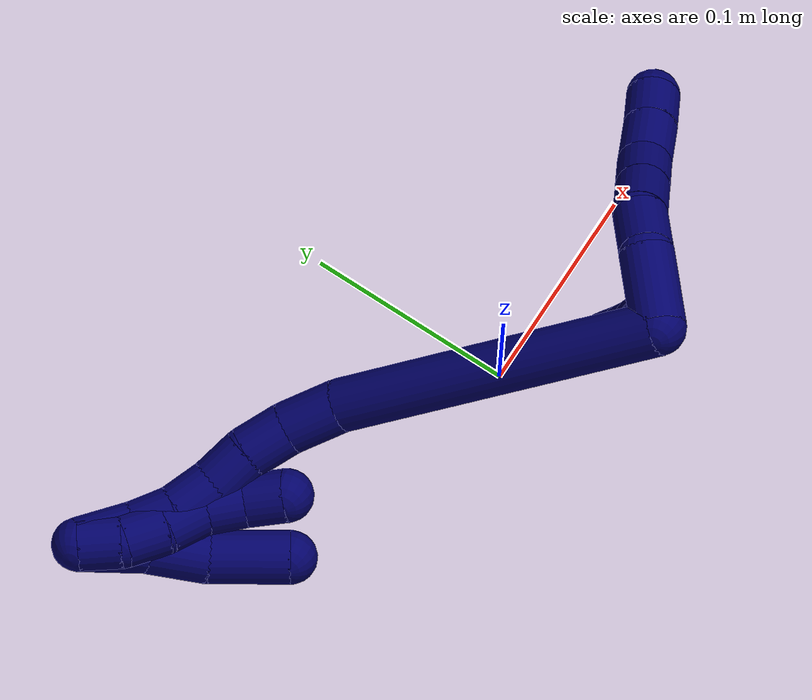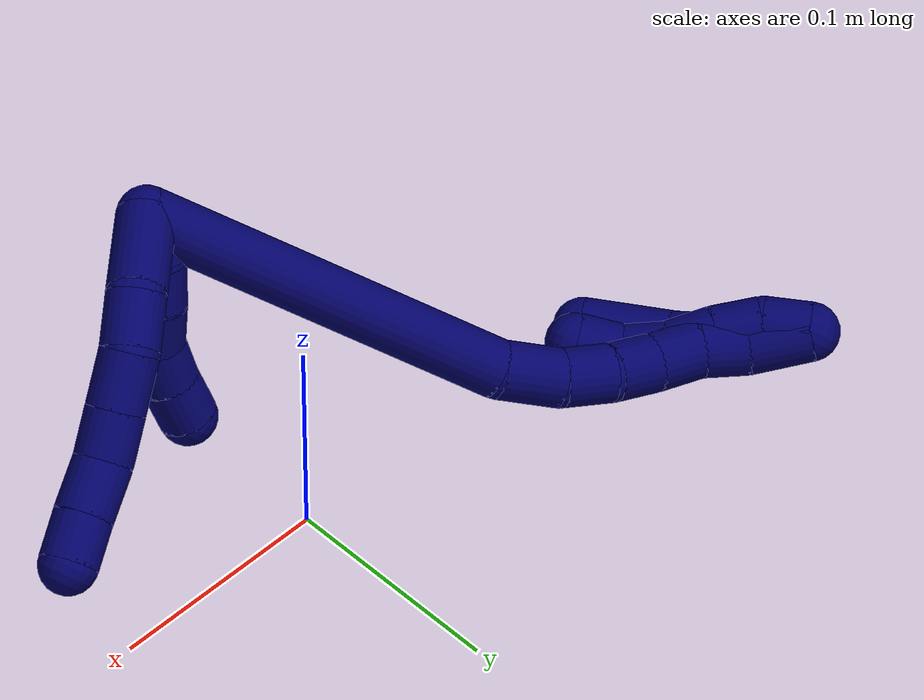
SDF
<sdf version="1.7">
 <world name="default">
  <model name="7">
   <static>0</static>
   <link name="7">
    <collision name="collision-cylinder-e_1_2_8">
     <pose>0.003751 0.010336 -0.015283 -2.54695 0.20058 -0.634635</pose>
     <geometry><cylinder><radius>0.0125</radius><length>0.037655</length></cylinder></geometry>
     <surface>
      <friction><ode><mu>1.16</mu><mu2>1.16</mu2><slip1>0</slip1><slip2>0</slip2></ode></friction>
      <contact><ode><kp>1e+06</kp><kd>1</kd><max_vel>0</max_vel><min_depth>0.001</min_depth></ode></contact>
     </surface>
    </collision>
    <visual name="visual-cylinder-e_1_2_8">
     <pose>0.003751 0.010336 -0.015283 -2.54695 0.20058 -0.634635</pose>
     <geometry><cylinder><radius>0.0125</radius><length>0.037655</length></cylinder></geometry>
     <material><ambient>0.003922 0 0.403922 1</ambient></material>
    </visual>
    <collision name="collision-cylinder-e_2_8_9">
     <pose>0.006814 0.025043 -0.041477 -2.76055 -0.058485 0.301044</pose>
     <geometry><cylinder><radius>0.0125</radius><length>0.023548</length></cylinder></geometry>
     <surface>
      <friction><ode><mu>1.16</mu><mu2>1.16</mu2><slip1>0</slip1><slip2>0</slip2></ode></friction>
      <contact><ode><kp>1e+06</kp><kd>1</kd><max_vel>0</max_vel><min_depth>0.001</min_depth></ode></contact>
     </surface>
    </collision>
    <visual name="visual-cylinder-e_2_8_9">
     <pose>0.006814 0.025043 -0.041477 -2.76055 -0.058485 0.301044</pose>
     <geometry><cylinder><radius>0.0125</radius><length>0.023548</length></cylinder></geometry>
     <material><ambient>0.003922 0 0.403922 1</ambient></material>
    </visual>
    <collision name="collision-cylinder-e_3_9_10">
     <pose>0.004065 0.030754 -0.064186 -3.02847 -0.171887 1.97872</pose>
     <geometry><cylinder><radius>0.0125</radius><length>0.024103</length></cylinder></geometry>
     <surface>
      <friction><ode><mu>1.16</mu><mu2>1.16</mu2><slip1>0</slip1><slip2>0</slip2></ode></friction>
      <contact><ode><kp>1e+06</kp><kd>1</kd><max_vel>0</max_vel><min_depth>0.001</min_depth></ode></contact>
     </surface>
    </collision>
    <visual name="visual-cylinder-e_3_9_10">
     <pose>0.004065 0.030754 -0.064186 -3.02847 -0.171887 1.97872</pose>
     <geometry><cylinder><radius>0.0125</radius><length>0.024103</length></cylinder></geometry>
     <material><ambient>0.003922 0 0.403922 1</ambient></material>
    </visual>
    <collision name="collision-cylinder-e_4_10_11">
     <pose>0.000288 0.033359 -0.086346 -3.02019 -0.162878 1.86147</pose>
     <geometry><cylinder><radius>0.0125</radius><length>0.021157</length></cylinder></geometry>
     <surface>
      <friction><ode><mu>1.16</mu><mu2>1.16</mu2><slip1>0</slip1><slip2>0</slip2></ode></friction>
      <contact><ode><kp>1e+06</kp><kd>1</kd><max_vel>0</max_vel><min_depth>0.001</min_depth></ode></contact>
     </surface>
    </collision>
    <visual name="visual-cylinder-e_4_10_11">
     <pose>0.000288 0.033359 -0.086346 -3.02019 -0.162878 1.86147</pose>
     <geometry><cylinder><radius>0.0125</radius><length>0.021157</length></cylinder></geometry>
     <material><ambient>0.003922 0 0.403922 1</ambient></material>
    </visual>
    <collision name="collision-cylinder-e_5_11_12">
     <pose>-0.000549 0.036879 -0.108216 -2.94802 0.074759 -0.735328</pose>
     <geometry><cylinder><radius>0.0125</radius><length>0.023521</length></cylinder></geometry>
     <surface>
      <friction><ode><mu>1.16</mu><mu2>1.16</mu2><slip1>0</slip1><slip2>0</slip2></ode></friction>
      <contact><ode><kp>1e+06</kp><kd>1</kd><max_vel>0</max_vel><min_depth>0.001</min_depth></ode></contact>
     </surface>
    </collision>
    <visual name="visual-cylinder-e_5_11_12">
     <pose>-0.000549 0.036879 -0.108216 -2.94802 0.074759 -0.735328</pose>
     <geometry><cylinder><radius>0.0125</radius><length>0.023521</length></cylinder></geometry>
     <material><ambient>0.003922 0 0.403922 1</ambient></material>
    </visual>
    <collision name="collision-cylinder-e_6_12_6">
     <pose>0.000822 0.041429 -0.129454 -2.91009 0.049251 -0.417494</pose>
     <geometry><cylinder><radius>0.0125</radius><length>0.020015</length></cylinder></geometry>
     <surface>
      <friction><ode><mu>1.16</mu><mu2>1.16</mu2><slip1>0</slip1><slip2>0</slip2></ode></friction>
      <contact><ode><kp>1e+06</kp><kd>1</kd><max_vel>0</max_vel><min_depth>0.001</min_depth></ode></contact>
     </surface>
    </collision>
    <visual name="visual-cylinder-e_6_12_6">
     <pose>0.000822 0.041429 -0.129454 -2.91009 0.049251 -0.417494</pose>
     <geometry><cylinder><radius>0.0125</radius><length>0.020015</length></cylinder></geometry>
     <material><ambient>0.003922 0 0.403922 1</ambient></material>
    </visual>
    <collision name="collision-cylinder-e_1_2_13">
     <pose>-0.006683 0.001284 -0.007327 -2.96812 -0.731948 2.69535</pose>
     <geometry><cylinder><radius>0.0125</radius><length>0.02</length></cylinder></geometry>
     <surface>
      <friction><ode><mu>1.16</mu><mu2>1.16</mu2><slip1>0</slip1><slip2>0</slip2></ode></friction>
      <contact><ode><kp>1e+06</kp><kd>1</kd><max_vel>0</max_vel><min_depth>0.001</min_depth></ode></contact>
     </surface>
    </collision>
    <visual name="visual-cylinder-e_1_2_13">
     <pose>-0.006683 0.001284 -0.007327 -2.96812 -0.731948 2.69535</pose>
     <geometry><cylinder><radius>0.0125</radius><length>0.02</length></cylinder></geometry>
     <material><ambient>0.003922 0 0.403922 1</ambient></material>
    </visual>
    <collision name="collision-cylinder-e_2_13_14">
     <pose>-0.019798 0.001682 -0.02226 3.02566 -0.698639 -2.82563</pose>
     <geometry><cylinder><radius>0.0125</radius><length>0.02</length></cylinder></geometry>
     <surface>
      <friction><ode><mu>1.16</mu><mu2>1.16</mu2><slip1>0</slip1><slip2>0</slip2></ode></friction>
      <contact><ode><kp>1e+06</kp><kd>1</kd><max_vel>0</max_vel><min_depth>0.001</min_depth></ode></contact>
     </surface>
    </collision>
    <visual name="visual-cylinder-e_2_13_14">
     <pose>-0.019798 0.001682 -0.02226 3.02566 -0.698639 -2.82563</pose>
     <geometry><cylinder><radius>0.0125</radius><length>0.02</length></cylinder></geometry>
     <material><ambient>0.003922 0 0.403922 1</ambient></material>
    </visual>
    <collision name="collision-cylinder-e_3_14_15">
     <pose>-0.032588 -0.001099 -0.037348 2.89341 -0.689074 -2.47255</pose>
     <geometry><cylinder><radius>0.0125</radius><length>0.02</length></cylinder></geometry>
     <surface>
      <friction><ode><mu>1.16</mu><mu2>1.16</mu2><slip1>0</slip1><slip2>0</slip2></ode></friction>
      <contact><ode><kp>1e+06</kp><kd>1</kd><max_vel>0</max_vel><min_depth>0.001</min_depth></ode></contact>
     </surface>
    </collision>
    <visual name="visual-cylinder-e_3_14_15">
     <pose>-0.032588 -0.001099 -0.037348 2.89341 -0.689074 -2.47255</pose>
     <geometry><cylinder><radius>0.0125</radius><length>0.02</length></cylinder></geometry>
     <material><ambient>0.003922 0 0.403922 1</ambient></material>
    </visual>
    <collision name="collision-cylinder-e_4_15_16">
     <pose>-0.047256 -0.002901 -0.050391 -3.1246 -0.980916 3.10977</pose>
     <geometry><cylinder><radius>0.0125</radius><length>0.02</length></cylinder></geometry>
     <surface>
      <friction><ode><mu>1.16</mu><mu2>1.16</mu2><slip1>0</slip1><slip2>0</slip2></ode></friction>
      <contact><ode><kp>1e+06</kp><kd>1</kd><max_vel>0</max_vel><min_depth>0.001</min_depth></ode></contact>
     </surface>
    </collision>
    <visual name="visual-cylinder-e_4_15_16">
     <pose>-0.047256 -0.002901 -0.050391 -3.1246 -0.980916 3.10977</pose>
     <geometry><cylinder><radius>0.0125</radius><length>0.02</length></cylinder></geometry>
     <material><ambient>0.003922 0 0.403922 1</ambient></material>
    </visual>
    <collision name="collision-cylinder-e_5_16_5">
     <pose>-0.064193 -0.00189 -0.060927 -2.95939 -1.04053 2.82534</pose>
     <geometry><cylinder><radius>0.0125</radius><length>0.02</length></cylinder></geometry>
     <surface>
      <friction><ode><mu>1.16</mu><mu2>1.16</mu2><slip1>0</slip1><slip2>0</slip2></ode></friction>
      <contact><ode><kp>1e+06</kp><kd>1</kd><max_vel>0</max_vel><min_depth>0.001</min_depth></ode></contact>
     </surface>
    </collision>
    <visual name="visual-cylinder-e_5_16_5">
     <pose>-0.064193 -0.00189 -0.060927 -2.95939 -1.04053 2.82534</pose>
     <geometry><cylinder><radius>0.0125</radius><length>0.02</length></cylinder></geometry>
     <material><ambient>0.003922 0 0.403922 1</ambient></material>
    </visual>
    <collision name="collision-cylinder-e_1_2_17">
     <pose>-0.068661 0.042469 0.002348 -1.51556 -1.01618 0.969894</pose>
     <geometry><cylinder><radius>0.0125</radius><length>0.161536</length></cylinder></geometry>
     <surface>
      <friction><ode><mu>1.16</mu><mu2>1.16</mu2><slip1>0</slip1><slip2>0</slip2></ode></friction>
      <contact><ode><kp>1e+06</kp><kd>1</kd><max_vel>0</max_vel><min_depth>0.001</min_depth></ode></contact>
     </surface>
    </collision>
    <visual name="visual-cylinder-e_1_2_17">
     <pose>-0.068661 0.042469 0.002348 -1.51556 -1.01618 0.969894</pose>
     <geometry><cylinder><radius>0.0125</radius><length>0.161536</length></cylinder></geometry>
     <material><ambient>0.003922 0 0.403922 1</ambient></material>
    </visual>
    <collision name="collision-cylinder-e_2_17_18">
     <pose>-0.148639 0.091311 0.00851 -1.0316 -0.990017 0.594064</pose>
     <geometry><cylinder><radius>0.0125</radius><length>0.027072</length></cylinder></geometry>
     <surface>
      <friction><ode><mu>1.16</mu><mu2>1.16</mu2><slip1>0</slip1><slip2>0</slip2></ode></friction>
      <contact><ode><kp>1e+06</kp><kd>1</kd><max_vel>0</max_vel><min_depth>0.001</min_depth></ode></contact>
     </surface>
    </collision>
    <visual name="visual-cylinder-e_2_17_18">
     <pose>-0.148639 0.091311 0.00851 -1.0316 -0.990017 0.594064</pose>
     <geometry><cylinder><radius>0.0125</radius><length>0.027072</length></cylinder></geometry>
     <material><ambient>0.003922 0 0.403922 1</ambient></material>
    </visual>
    <collision name="collision-cylinder-e_3_18_19">
     <pose>-0.168445 0.101983 0.017667 -0.677538 -0.891232 0.333483</pose>
     <geometry><cylinder><radius>0.0125</radius><length>0.021827</length></cylinder></geometry>
     <surface>
      <friction><ode><mu>1.16</mu><mu2>1.16</mu2><slip1>0</slip1><slip2>0</slip2></ode></friction>
      <contact><ode><kp>1e+06</kp><kd>1</kd><max_vel>0</max_vel><min_depth>0.001</min_depth></ode></contact>
     </surface>
    </collision>
    <visual name="visual-cylinder-e_3_18_19">
     <pose>-0.168445 0.101983 0.017667 -0.677538 -0.891232 0.333483</pose>
     <geometry><cylinder><radius>0.0125</radius><length>0.021827</length></cylinder></geometry>
     <material><ambient>0.003922 0 0.403922 1</ambient></material>
    </visual>
    <collision name="collision-cylinder-e_4_19_20">
     <pose>-0.185541 0.108325 0.028738 -0.342539 -0.955756 0.178685</pose>
     <geometry><cylinder><radius>0.0125</radius><length>0.021076</length></cylinder></geometry>
     <surface>
      <friction><ode><mu>1.16</mu><mu2>1.16</mu2><slip1>0</slip1><slip2>0</slip2></ode></friction>
      <contact><ode><kp>1e+06</kp><kd>1</kd><max_vel>0</max_vel><min_depth>0.001</min_depth></ode></contact>
     </surface>
    </collision>
    <visual name="visual-cylinder-e_4_19_20">
     <pose>-0.185541 0.108325 0.028738 -0.342539 -0.955756 0.178685</pose>
     <geometry><cylinder><radius>0.0125</radius><length>0.021076</length></cylinder></geometry>
     <material><ambient>0.003922 0 0.403922 1</ambient></material>
    </visual>
    <collision name="collision-cylinder-e_5_20_21">
     <pose>-0.201291 0.114129 0.041373 -0.498643 -0.73729 0.196091</pose>
     <geometry><cylinder><radius>0.0125</radius><length>0.021251</length></cylinder></geometry>
     <surface>
      <friction><ode><mu>1.16</mu><mu2>1.16</mu2><slip1>0</slip1><slip2>0</slip2></ode></friction>
      <contact><ode><kp>1e+06</kp><kd>1</kd><max_vel>0</max_vel><min_depth>0.001</min_depth></ode></contact>
     </surface>
    </collision>
    <visual name="visual-cylinder-e_5_20_21">
     <pose>-0.201291 0.114129 0.041373 -0.498643 -0.73729 0.196091</pose>
     <geometry><cylinder><radius>0.0125</radius><length>0.021251</length></cylinder></geometry>
     <material><ambient>0.003922 0 0.403922 1</ambient></material>
    </visual>
    <collision name="collision-cylinder-e_6_21_22">
     <pose>-0.215496 0.123442 0.053085 -0.857456 -0.766053 0.364259</pose>
     <geometry><cylinder><radius>0.0125</radius><length>0.020372</length></cylinder></geometry>
     <surface>
      <friction><ode><mu>1.16</mu><mu2>1.16</mu2><slip1>0</slip1><slip2>0</slip2></ode></friction>
      <contact><ode><kp>1e+06</kp><kd>1</kd><max_vel>0</max_vel><min_depth>0.001</min_depth></ode></contact>
     </surface>
    </collision>
    <visual name="visual-cylinder-e_6_21_22">
     <pose>-0.215496 0.123442 0.053085 -0.857456 -0.766053 0.364259</pose>
     <geometry><cylinder><radius>0.0125</radius><length>0.020372</length></cylinder></geometry>
     <material><ambient>0.003922 0 0.403922 1</ambient></material>
    </visual>
    <collision name="collision-cylinder-e_7_22_1">
     <pose>-0.228925 0.137632 0.065967 -0.8189 -0.493773 0.217883</pose>
     <geometry><cylinder><radius>0.0125</radius><length>0.026866</length></cylinder></geometry>
     <surface>
      <friction><ode><mu>1.16</mu><mu2>1.16</mu2><slip1>0</slip1><slip2>0</slip2></ode></friction>
      <contact><ode><kp>1e+06</kp><kd>1</kd><max_vel>0</max_vel><min_depth>0.001</min_depth></ode></contact>
     </surface>
    </collision>
    <visual name="visual-cylinder-e_7_22_1">
     <pose>-0.228925 0.137632 0.065967 -0.8189 -0.493773 0.217883</pose>
     <geometry><cylinder><radius>0.0125</radius><length>0.026866</length></cylinder></geometry>
     <material><ambient>0.003922 0 0.403922 1</ambient></material>
    </visual>
    <collision name="collision-cylinder-e_1_1_23">
     <pose>-0.229701 0.138566 0.070984 1.94901 0.593171 0.846156</pose>
     <geometry><cylinder><radius>0.0125</radius><length>0.02</length></cylinder></geometry>
     <surface>
      <friction><ode><mu>1.16</mu><mu2>1.16</mu2><slip1>0</slip1><slip2>0</slip2></ode></friction>
      <contact><ode><kp>1e+06</kp><kd>1</kd><max_vel>0</max_vel><min_depth>0.001</min_depth></ode></contact>
     </surface>
    </collision>
    <visual name="visual-cylinder-e_1_1_23">
     <pose>-0.229701 0.138566 0.070984 1.94901 0.593171 0.846156</pose>
     <geometry><cylinder><radius>0.0125</radius><length>0.02</length></cylinder></geometry>
     <material><ambient>0.003922 0 0.403922 1</ambient></material>
    </visual>
    <collision name="collision-cylinder-e_2_23_24">
     <pose>-0.218978 0.124616 0.062036 2.32677 0.539114 1.1389</pose>
     <geometry><cylinder><radius>0.0125</radius><length>0.02</length></cylinder></geometry>
     <surface>
      <friction><ode><mu>1.16</mu><mu2>1.16</mu2><slip1>0</slip1><slip2>0</slip2></ode></friction>
      <contact><ode><kp>1e+06</kp><kd>1</kd><max_vel>0</max_vel><min_depth>0.001</min_depth></ode></contact>
     </surface>
    </collision>
    <visual name="visual-cylinder-e_2_23_24">
     <pose>-0.218978 0.124616 0.062036 2.32677 0.539114 1.1389</pose>
     <geometry><cylinder><radius>0.0125</radius><length>0.02</length></cylinder></geometry>
     <material><ambient>0.003922 0 0.403922 1</ambient></material>
    </visual>
    <collision name="collision-cylinder-e_3_24_25">
     <pose>-0.208589 0.113384 0.049256 2.51514 0.553312 1.43953</pose>
     <geometry><cylinder><radius>0.0125</radius><length>0.02</length></cylinder></geometry>
     <surface>
      <friction><ode><mu>1.16</mu><mu2>1.16</mu2><slip1>0</slip1><slip2>0</slip2></ode></friction>
      <contact><ode><kp>1e+06</kp><kd>1</kd><max_vel>0</max_vel><min_depth>0.001</min_depth></ode></contact>
     </surface>
    </collision>
    <visual name="visual-cylinder-e_3_24_25">
     <pose>-0.208589 0.113384 0.049256 2.51514 0.553312 1.43953</pose>
     <geometry><cylinder><radius>0.0125</radius><length>0.02</length></cylinder></geometry>
     <material><ambient>0.003922 0 0.403922 1</ambient></material>
    </visual>
    <collision name="collision-cylinder-e_4_25_26">
     <pose>-0.198227 0.101268 0.037556 2.16426 0.535957 0.953439</pose>
     <geometry><cylinder><radius>0.0125</radius><length>0.02</length></cylinder></geometry>
     <surface>
      <friction><ode><mu>1.16</mu><mu2>1.16</mu2><slip1>0</slip1><slip2>0</slip2></ode></friction>
      <contact><ode><kp>1e+06</kp><kd>1</kd><max_vel>0</max_vel><min_depth>0.001</min_depth></ode></contact>
     </surface>
    </collision>
    <visual name="visual-cylinder-e_4_25_26">
     <pose>-0.198227 0.101268 0.037556 2.16426 0.535957 0.953439</pose>
     <geometry><cylinder><radius>0.0125</radius><length>0.02</length></cylinder></geometry>
     <material><ambient>0.003922 0 0.403922 1</ambient></material>
    </visual>
    <collision name="collision-cylinder-e_5_26_4">
     <pose>-0.186151 0.087225 0.030852 1.83834 0.771145 0.978029</pose>
     <geometry><cylinder><radius>0.0125</radius><length>0.02</length></cylinder></geometry>
     <surface>
      <friction><ode><mu>1.16</mu><mu2>1.16</mu2><slip1>0</slip1><slip2>0</slip2></ode></friction>
      <contact><ode><kp>1e+06</kp><kd>1</kd><max_vel>0</max_vel><min_depth>0.001</min_depth></ode></contact>
     </surface>
    </collision>
    <visual name="visual-cylinder-e_5_26_4">
     <pose>-0.186151 0.087225 0.030852 1.83834 0.771145 0.978029</pose>
     <geometry><cylinder><radius>0.0125</radius><length>0.02</length></cylinder></geometry>
     <material><ambient>0.003922 0 0.403922 1</ambient></material>
    </visual>
    <collision name="collision-cylinder-e_1_1_27">
     <pose>-0.231995 0.132776 0.065452 2.13788 0.203208 0.367424</pose>
     <geometry><cylinder><radius>0.0125</radius><length>0.032671</length></cylinder></geometry>
     <surface>
      <friction><ode><mu>1.16</mu><mu2>1.16</mu2><slip1>0</slip1><slip2>0</slip2></ode></friction>
      <contact><ode><kp>1e+06</kp><kd>1</kd><max_vel>0</max_vel><min_depth>0.001</min_depth></ode></contact>
     </surface>
    </collision>
    <visual name="visual-cylinder-e_1_1_27">
     <pose>-0.231995 0.132776 0.065452 2.13788 0.203208 0.367424</pose>
     <geometry><cylinder><radius>0.0125</radius><length>0.032671</length></cylinder></geometry>
     <material><ambient>0.003922 0 0.403922 1</ambient></material>
    </visual>
    <collision name="collision-cylinder-e_2_27_28">
     <pose>-0.224829 0.105872 0.052202 1.90497 0.266088 0.371929</pose>
     <geometry><cylinder><radius>0.0125</radius><length>0.029424</length></cylinder></geometry>
     <surface>
      <friction><ode><mu>1.16</mu><mu2>1.16</mu2><slip1>0</slip1><slip2>0</slip2></ode></friction>
      <contact><ode><kp>1e+06</kp><kd>1</kd><max_vel>0</max_vel><min_depth>0.001</min_depth></ode></contact>
     </surface>
    </collision>
    <visual name="visual-cylinder-e_2_27_28">
     <pose>-0.224829 0.105872 0.052202 1.90497 0.266088 0.371929</pose>
     <geometry><cylinder><radius>0.0125</radius><length>0.029424</length></cylinder></geometry>
     <material><ambient>0.003922 0 0.403922 1</ambient></material>
    </visual>
    <collision name="collision-cylinder-e_3_28_3">
     <pose>-0.211372 0.076964 0.042349 1.89431 0.530476 0.722058</pose>
     <geometry><cylinder><radius>0.0125</radius><length>0.037905</length></cylinder></geometry>
     <surface>
      <friction><ode><mu>1.16</mu><mu2>1.16</mu2><slip1>0</slip1><slip2>0</slip2></ode></friction>
      <contact><ode><kp>1e+06</kp><kd>1</kd><max_vel>0</max_vel><min_depth>0.001</min_depth></ode></contact>
     </surface>
    </collision>
    <visual name="visual-cylinder-e_3_28_3">
     <pose>-0.211372 0.076964 0.042349 1.89431 0.530476 0.722058</pose>
     <geometry><cylinder><radius>0.0125</radius><length>0.037905</length></cylinder></geometry>
     <material><ambient>0.003922 0 0.403922 1</ambient></material>
    </visual>
    <collision name="collision-sphere-3">
     <pose>-0.201783 0.061464 0.037152 0 -0 0</pose>
     <geometry><sphere><radius>0.0125</radius></sphere></geometry>
     <surface>
      <friction><ode><mu>1.16</mu><mu2>1.16</mu2><slip1>0</slip1><slip2>0</slip2></ode></friction>
      <contact><ode><kp>1e+06</kp><kd>1</kd><max_vel>0</max_vel><min_depth>0.001</min_depth></ode></contact>
     </surface>
    </collision>
    <visual name="visual-sphere-3">
     <pose>-0.201783 0.061464 0.037152 0 -0 0</pose>
     <geometry><sphere><radius>0.0125</radius></sphere></geometry>
     <material><ambient>0.003922 0 0.403922 1</ambient></material>
    </visual>
    <collision name="collision-sphere-28">
     <pose>-0.220961 0.092463 0.047546 0 -0 0</pose>
     <geometry><sphere><radius>0.0125</radius></sphere></geometry>
     <surface>
      <friction><ode><mu>1.16</mu><mu2>1.16</mu2><slip1>0</slip1><slip2>0</slip2></ode></friction>
      <contact><ode><kp>1e+06</kp><kd>1</kd><max_vel>0</max_vel><min_depth>0.001</min_depth></ode></contact>
     </surface>
    </collision>
    <visual name="visual-sphere-28">
     <pose>-0.220961 0.092463 0.047546 0 -0 0</pose>
     <geometry><sphere><radius>0.0125</radius></sphere></geometry>
     <material><ambient>0.003922 0 0.403922 1</ambient></material>
    </visual>
    <collision name="collision-sphere-27">
     <pose>-0.228698 0.119281 0.056857 0 -0 0</pose>
     <geometry><sphere><radius>0.0125</radius></sphere></geometry>
     <surface>
      <friction><ode><mu>1.16</mu><mu2>1.16</mu2><slip1>0</slip1><slip2>0</slip2></ode></friction>
      <contact><ode><kp>1e+06</kp><kd>1</kd><max_vel>0</max_vel><min_depth>0.001</min_depth></ode></contact>
     </surface>
    </collision>
    <visual name="visual-sphere-27">
     <pose>-0.228698 0.119281 0.056857 0 -0 0</pose>
     <geometry><sphere><radius>0.0125</radius></sphere></geometry>
     <material><ambient>0.003922 0 0.403922 1</ambient></material>
    </visual>
    <collision name="collision-sphere-4">
     <pose>-0.179181 0.080309 0.028956 0 -0 0</pose>
     <geometry><sphere><radius>0.0125</radius></sphere></geometry>
     <surface>
      <friction><ode><mu>1.16</mu><mu2>1.16</mu2><slip1>0</slip1><slip2>0</slip2></ode></friction>
      <contact><ode><kp>1e+06</kp><kd>1</kd><max_vel>0</max_vel><min_depth>0.001</min_depth></ode></contact>
     </surface>
    </collision>
    <visual name="visual-sphere-4">
     <pose>-0.179181 0.080309 0.028956 0 -0 0</pose>
     <geometry><sphere><radius>0.0125</radius></sphere></geometry>
     <material><ambient>0.003922 0 0.403922 1</ambient></material>
    </visual>
    <collision name="collision-sphere-26">
     <pose>-0.19312 0.094141 0.032747 0 -0 0</pose>
     <geometry><sphere><radius>0.0125</radius></sphere></geometry>
     <surface>
      <friction><ode><mu>1.16</mu><mu2>1.16</mu2><slip1>0</slip1><slip2>0</slip2></ode></friction>
      <contact><ode><kp>1e+06</kp><kd>1</kd><max_vel>0</max_vel><min_depth>0.001</min_depth></ode></contact>
     </surface>
    </collision>
    <visual name="visual-sphere-26">
     <pose>-0.19312 0.094141 0.032747 0 -0 0</pose>
     <geometry><sphere><radius>0.0125</radius></sphere></geometry>
     <material><ambient>0.003922 0 0.403922 1</ambient></material>
    </visual>
    <collision name="collision-sphere-25">
     <pose>-0.203334 0.108396 0.042364 0 -0 0</pose>
     <geometry><sphere><radius>0.0125</radius></sphere></geometry>
     <surface>
      <friction><ode><mu>1.16</mu><mu2>1.16</mu2><slip1>0</slip1><slip2>0</slip2></ode></friction>
      <contact><ode><kp>1e+06</kp><kd>1</kd><max_vel>0</max_vel><min_depth>0.001</min_depth></ode></contact>
     </surface>
    </collision>
    <visual name="visual-sphere-25">
     <pose>-0.203334 0.108396 0.042364 0 -0 0</pose>
     <geometry><sphere><radius>0.0125</radius></sphere></geometry>
     <material><ambient>0.003922 0 0.403922 1</ambient></material>
    </visual>
    <collision name="collision-sphere-24">
     <pose>-0.213844 0.118372 0.056149 0 -0 0</pose>
     <geometry><sphere><radius>0.0125</radius></sphere></geometry>
     <surface>
      <friction><ode><mu>1.16</mu><mu2>1.16</mu2><slip1>0</slip1><slip2>0</slip2></ode></friction>
      <contact><ode><kp>1e+06</kp><kd>1</kd><max_vel>0</max_vel><min_depth>0.001</min_depth></ode></contact>
     </surface>
    </collision>
    <visual name="visual-sphere-24">
     <pose>-0.213844 0.118372 0.056149 0 -0 0</pose>
     <geometry><sphere><radius>0.0125</radius></sphere></geometry>
     <material><ambient>0.003922 0 0.403922 1</ambient></material>
    </visual>
    <collision name="collision-sphere-23">
     <pose>-0.224111 0.13086 0.067922 0 -0 0</pose>
     <geometry><sphere><radius>0.0125</radius></sphere></geometry>
     <surface>
      <friction><ode><mu>1.16</mu><mu2>1.16</mu2><slip1>0</slip1><slip2>0</slip2></ode></friction>
      <contact><ode><kp>1e+06</kp><kd>1</kd><max_vel>0</max_vel><min_depth>0.001</min_depth></ode></contact>
     </surface>
    </collision>
    <visual name="visual-sphere-23">
     <pose>-0.224111 0.13086 0.067922 0 -0 0</pose>
     <geometry><sphere><radius>0.0125</radius></sphere></geometry>
     <material><ambient>0.003922 0 0.403922 1</ambient></material>
    </visual>
    <collision name="collision-sphere-1">
     <pose>-0.235291 0.146271 0.074046 0 -0 0</pose>
     <geometry><sphere><radius>0.0125</radius></sphere></geometry>
     <surface>
      <friction><ode><mu>1.16</mu><mu2>1.16</mu2><slip1>0</slip1><slip2>0</slip2></ode></friction>
      <contact><ode><kp>1e+06</kp><kd>1</kd><max_vel>0</max_vel><min_depth>0.001</min_depth></ode></contact>
     </surface>
    </collision>
    <visual name="visual-sphere-1">
     <pose>-0.235291 0.146271 0.074046 0 -0 0</pose>
     <geometry><sphere><radius>0.0125</radius></sphere></geometry>
     <material><ambient>0.003922 0 0.403922 1</ambient></material>
    </visual>
    <collision name="collision-sphere-22">
     <pose>-0.222558 0.128992 0.057888 0 -0 0</pose>
     <geometry><sphere><radius>0.0125</radius></sphere></geometry>
     <surface>
      <friction><ode><mu>1.16</mu><mu2>1.16</mu2><slip1>0</slip1><slip2>0</slip2></ode></friction>
      <contact><ode><kp>1e+06</kp><kd>1</kd><max_vel>0</max_vel><min_depth>0.001</min_depth></ode></contact>
     </surface>
    </collision>
    <visual name="visual-sphere-22">
     <pose>-0.222558 0.128992 0.057888 0 -0 0</pose>
     <geometry><sphere><radius>0.0125</radius></sphere></geometry>
     <material><ambient>0.003922 0 0.403922 1</ambient></material>
    </visual>
    <collision name="collision-sphere-21">
     <pose>-0.208434 0.117891 0.048281 0 -0 0</pose>
     <geometry><sphere><radius>0.0125</radius></sphere></geometry>
     <surface>
      <friction><ode><mu>1.16</mu><mu2>1.16</mu2><slip1>0</slip1><slip2>0</slip2></ode></friction>
      <contact><ode><kp>1e+06</kp><kd>1</kd><max_vel>0</max_vel><min_depth>0.001</min_depth></ode></contact>
     </surface>
    </collision>
    <visual name="visual-sphere-21">
     <pose>-0.208434 0.117891 0.048281 0 -0 0</pose>
     <geometry><sphere><radius>0.0125</radius></sphere></geometry>
     <material><ambient>0.003922 0 0.403922 1</ambient></material>
    </visual>
    <collision name="collision-sphere-12">
     <pose>0.000329 0.039135 -0.119725 0 -0 0</pose>
     <geometry><sphere><radius>0.0125</radius></sphere></geometry>
     <surface>
      <friction><ode><mu>1.16</mu><mu2>1.16</mu2><slip1>0</slip1><slip2>0</slip2></ode></friction>
      <contact><ode><kp>1e+06</kp><kd>1</kd><max_vel>0</max_vel><min_depth>0.001</min_depth></ode></contact>
     </surface>
    </collision>
    <visual name="visual-sphere-12">
     <pose>0.000329 0.039135 -0.119725 0 -0 0</pose>
     <geometry><sphere><radius>0.0125</radius></sphere></geometry>
     <material><ambient>0.003922 0 0.403922 1</ambient></material>
    </visual>
    <collision name="collision-sphere-11">
     <pose>-0.001428 0.034623 -0.096707 0 -0 0</pose>
     <geometry><sphere><radius>0.0125</radius></sphere></geometry>
     <surface>
      <friction><ode><mu>1.16</mu><mu2>1.16</mu2><slip1>0</slip1><slip2>0</slip2></ode></friction>
      <contact><ode><kp>1e+06</kp><kd>1</kd><max_vel>0</max_vel><min_depth>0.001</min_depth></ode></contact>
     </surface>
    </collision>
    <visual name="visual-sphere-11">
     <pose>-0.001428 0.034623 -0.096707 0 -0 0</pose>
     <geometry><sphere><radius>0.0125</radius></sphere></geometry>
     <material><ambient>0.003922 0 0.403922 1</ambient></material>
    </visual>
    <collision name="collision-sphere-10">
     <pose>0.002003 0.032095 -0.075984 0 -0 0</pose>
     <geometry><sphere><radius>0.0125</radius></sphere></geometry>
     <surface>
      <friction><ode><mu>1.16</mu><mu2>1.16</mu2><slip1>0</slip1><slip2>0</slip2></ode></friction>
      <contact><ode><kp>1e+06</kp><kd>1</kd><max_vel>0</max_vel><min_depth>0.001</min_depth></ode></contact>
     </surface>
    </collision>
    <visual name="visual-sphere-10">
     <pose>0.002003 0.032095 -0.075984 0 -0 0</pose>
     <geometry><sphere><radius>0.0125</radius></sphere></geometry>
     <material><ambient>0.003922 0 0.403922 1</ambient></material>
    </visual>
    <collision name="collision-sphere-9">
     <pose>0.006126 0.029414 -0.052388 0 -0 0</pose>
     <geometry><sphere><radius>0.0125</radius></sphere></geometry>
     <surface>
      <friction><ode><mu>1.16</mu><mu2>1.16</mu2><slip1>0</slip1><slip2>0</slip2></ode></friction>
      <contact><ode><kp>1e+06</kp><kd>1</kd><max_vel>0</max_vel><min_depth>0.001</min_depth></ode></contact>
     </surface>
    </collision>
    <visual name="visual-sphere-9">
     <pose>0.006126 0.029414 -0.052388 0 -0 0</pose>
     <geometry><sphere><radius>0.0125</radius></sphere></geometry>
     <material><ambient>0.003922 0 0.403922 1</ambient></material>
    </visual>
    <collision name="collision-sphere-2">
     <geometry><sphere><radius>0.0125</radius></sphere></geometry>
     <surface>
      <friction><ode><mu>1.16</mu><mu2>1.16</mu2><slip1>0</slip1><slip2>0</slip2></ode></friction>
      <contact><ode><kp>1e+06</kp><kd>1</kd><max_vel>0</max_vel><min_depth>0.001</min_depth></ode></contact>
     </surface>
    </collision>
    <visual name="visual-sphere-2">
     <geometry><sphere><radius>0.0125</radius></sphere></geometry>
     <material><ambient>0.003922 0 0.403922 1</ambient></material>
    </visual>
    <collision name="collision-sphere-19">
     <pose>-0.176934 0.106283 0.023011 0 -0 0</pose>
     <geometry><sphere><radius>0.0125</radius></sphere></geometry>
     <surface>
      <friction><ode><mu>1.16</mu><mu2>1.16</mu2><slip1>0</slip1><slip2>0</slip2></ode></friction>
      <contact><ode><kp>1e+06</kp><kd>1</kd><max_vel>0</max_vel><min_depth>0.001</min_depth></ode></contact>
     </surface>
    </collision>
    <visual name="visual-sphere-19">
     <pose>-0.176934 0.106283 0.023011 0 -0 0</pose>
     <geometry><sphere><radius>0.0125</radius></sphere></geometry>
     <material><ambient>0.003922 0 0.403922 1</ambient></material>
    </visual>
    <collision name="collision-sphere-8">
     <pose>0.007502 0.020672 -0.030566 0 -0 0</pose>
     <geometry><sphere><radius>0.0125</radius></sphere></geometry>
     <surface>
      <friction><ode><mu>1.16</mu><mu2>1.16</mu2><slip1>0</slip1><slip2>0</slip2></ode></friction>
      <contact><ode><kp>1e+06</kp><kd>1</kd><max_vel>0</max_vel><min_depth>0.001</min_depth></ode></contact>
     </surface>
    </collision>
    <visual name="visual-sphere-8">
     <pose>0.007502 0.020672 -0.030566 0 -0 0</pose>
     <geometry><sphere><radius>0.0125</radius></sphere></geometry>
     <material><ambient>0.003922 0 0.403922 1</ambient></material>
    </visual>
    <collision name="collision-sphere-6">
     <pose>0.001315 0.043722 -0.139183 0 -0 0</pose>
     <geometry><sphere><radius>0.0125</radius></sphere></geometry>
     <surface>
      <friction><ode><mu>1.16</mu><mu2>1.16</mu2><slip1>0</slip1><slip2>0</slip2></ode></friction>
      <contact><ode><kp>1e+06</kp><kd>1</kd><max_vel>0</max_vel><min_depth>0.001</min_depth></ode></contact>
     </surface>
    </collision>
    <visual name="visual-sphere-6">
     <pose>0.001315 0.043722 -0.139183 0 -0 0</pose>
     <geometry><sphere><radius>0.0125</radius></sphere></geometry>
     <material><ambient>0.003922 0 0.403922 1</ambient></material>
    </visual>
    <collision name="collision-sphere-13">
     <pose>-0.013366 0.002568 -0.014654 0 -0 0</pose>
     <geometry><sphere><radius>0.0125</radius></sphere></geometry>
     <surface>
      <friction><ode><mu>1.16</mu><mu2>1.16</mu2><slip1>0</slip1><slip2>0</slip2></ode></friction>
      <contact><ode><kp>1e+06</kp><kd>1</kd><max_vel>0</max_vel><min_depth>0.001</min_depth></ode></contact>
     </surface>
    </collision>
    <visual name="visual-sphere-13">
     <pose>-0.013366 0.002568 -0.014654 0 -0 0</pose>
     <geometry><sphere><radius>0.0125</radius></sphere></geometry>
     <material><ambient>0.003922 0 0.403922 1</ambient></material>
    </visual>
    <collision name="collision-sphere-14">
     <pose>-0.02623 0.000797 -0.029866 0 -0 0</pose>
     <geometry><sphere><radius>0.0125</radius></sphere></geometry>
     <surface>
      <friction><ode><mu>1.16</mu><mu2>1.16</mu2><slip1>0</slip1><slip2>0</slip2></ode></friction>
      <contact><ode><kp>1e+06</kp><kd>1</kd><max_vel>0</max_vel><min_depth>0.001</min_depth></ode></contact>
     </surface>
    </collision>
    <visual name="visual-sphere-14">
     <pose>-0.02623 0.000797 -0.029866 0 -0 0</pose>
     <geometry><sphere><radius>0.0125</radius></sphere></geometry>
     <material><ambient>0.003922 0 0.403922 1</ambient></material>
    </visual>
    <collision name="collision-sphere-15">
     <pose>-0.038946 -0.002995 -0.044829 0 -0 0</pose>
     <geometry><sphere><radius>0.0125</radius></sphere></geometry>
     <surface>
      <friction><ode><mu>1.16</mu><mu2>1.16</mu2><slip1>0</slip1><slip2>0</slip2></ode></friction>
      <contact><ode><kp>1e+06</kp><kd>1</kd><max_vel>0</max_vel><min_depth>0.001</min_depth></ode></contact>
     </surface>
    </collision>
    <visual name="visual-sphere-15">
     <pose>-0.038946 -0.002995 -0.044829 0 -0 0</pose>
     <geometry><sphere><radius>0.0125</radius></sphere></geometry>
     <material><ambient>0.003922 0 0.403922 1</ambient></material>
    </visual>
    <collision name="collision-sphere-16">
     <pose>-0.055567 -0.002806 -0.055953 0 -0 0</pose>
     <geometry><sphere><radius>0.0125</radius></sphere></geometry>
     <surface>
      <friction><ode><mu>1.16</mu><mu2>1.16</mu2><slip1>0</slip1><slip2>0</slip2></ode></friction>
      <contact><ode><kp>1e+06</kp><kd>1</kd><max_vel>0</max_vel><min_depth>0.001</min_depth></ode></contact>
     </surface>
    </collision>
    <visual name="visual-sphere-16">
     <pose>-0.055567 -0.002806 -0.055953 0 -0 0</pose>
     <geometry><sphere><radius>0.0125</radius></sphere></geometry>
     <material><ambient>0.003922 0 0.403922 1</ambient></material>
    </visual>
    <collision name="collision-sphere-5">
     <pose>-0.07282 -0.000973 -0.065901 0 -0 0</pose>
     <geometry><sphere><radius>0.0125</radius></sphere></geometry>
     <surface>
      <friction><ode><mu>1.16</mu><mu2>1.16</mu2><slip1>0</slip1><slip2>0</slip2></ode></friction>
      <contact><ode><kp>1e+06</kp><kd>1</kd><max_vel>0</max_vel><min_depth>0.001</min_depth></ode></contact>
     </surface>
    </collision>
    <visual name="visual-sphere-5">
     <pose>-0.07282 -0.000973 -0.065901 0 -0 0</pose>
     <geometry><sphere><radius>0.0125</radius></sphere></geometry>
     <material><ambient>0.003922 0 0.403922 1</ambient></material>
    </visual>
    <collision name="collision-sphere-17">
     <pose>-0.137322 0.084937 0.004697 0 -0 0</pose>
     <geometry><sphere><radius>0.0125</radius></sphere></geometry>
     <surface>
      <friction><ode><mu>1.16</mu><mu2>1.16</mu2><slip1>0</slip1><slip2>0</slip2></ode></friction>
      <contact><ode><kp>1e+06</kp><kd>1</kd><max_vel>0</max_vel><min_depth>0.001</min_depth></ode></contact>
     </surface>
    </collision>
    <visual name="visual-sphere-17">
     <pose>-0.137322 0.084937 0.004697 0 -0 0</pose>
     <geometry><sphere><radius>0.0125</radius></sphere></geometry>
     <material><ambient>0.003922 0 0.403922 1</ambient></material>
    </visual>
    <collision name="collision-sphere-18">
     <pose>-0.159956 0.097684 0.012323 0 -0 0</pose>
     <geometry><sphere><radius>0.0125</radius></sphere></geometry>
     <surface>
      <friction><ode><mu>1.16</mu><mu2>1.16</mu2><slip1>0</slip1><slip2>0</slip2></ode></friction>
      <contact><ode><kp>1e+06</kp><kd>1</kd><max_vel>0</max_vel><min_depth>0.001</min_depth></ode></contact>
     </surface>
    </collision>
    <visual name="visual-sphere-18">
     <pose>-0.159956 0.097684 0.012323 0 -0 0</pose>
     <geometry><sphere><radius>0.0125</radius></sphere></geometry>
     <material><ambient>0.003922 0 0.403922 1</ambient></material>
    </visual>
    <collision name="collision-sphere-20">
     <pose>-0.194148 0.110367 0.034465 0 -0 0</pose>
     <geometry><sphere><radius>0.0125</radius></sphere></geometry>
     <surface>
      <friction><ode><mu>1.16</mu><mu2>1.16</mu2><slip1>0</slip1><slip2>0</slip2></ode></friction>
      <contact><ode><kp>1e+06</kp><kd>1</kd><max_vel>0</max_vel><min_depth>0.001</min_depth></ode></contact>
     </surface>
    </collision>
    <visual name="visual-sphere-20">
     <pose>-0.194148 0.110367 0.034465 0 -0 0</pose>
     <geometry><sphere><radius>0.0125</radius></sphere></geometry>
     <material><ambient>0.003922 0 0.403922 1</ambient></material>
    </visual>
    <inertial>
     <pose>-0.111415 0.064286 0.002666 0 -0 0</pose>
     <mass>0.75</mass>
     <inertia>
      <ixx>0.000282</ixx>
      <ixy>0</ixy>
      <ixz>0</ixz>
      <iyy>0.000441</iyy>
      <iyz>0</iyz>
      <izz>0.000109</izz>
     </inertia>
    </inertial>
   </link>
   <pose>0.024348 -0.064445 0.151873 0.435039 -0.848963 -0.315855</pose>
  </model>
 </world>
</sdf>
